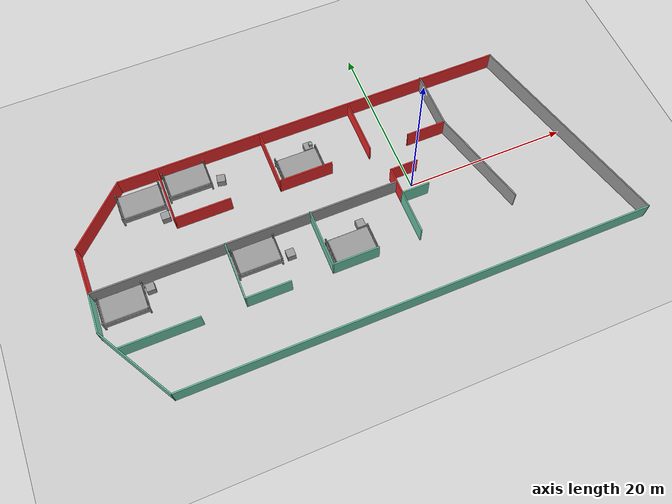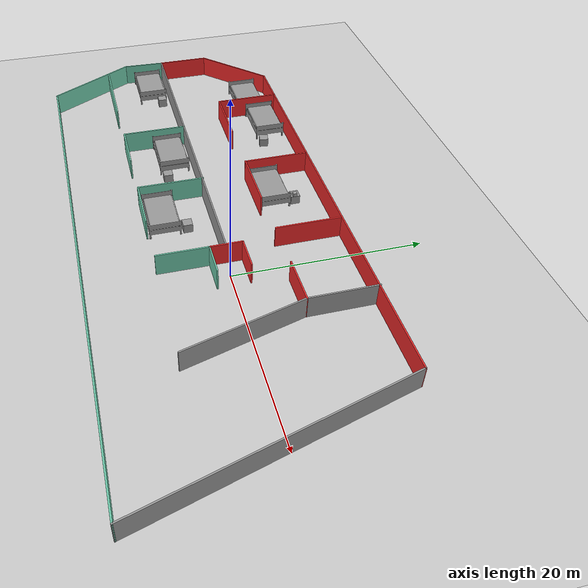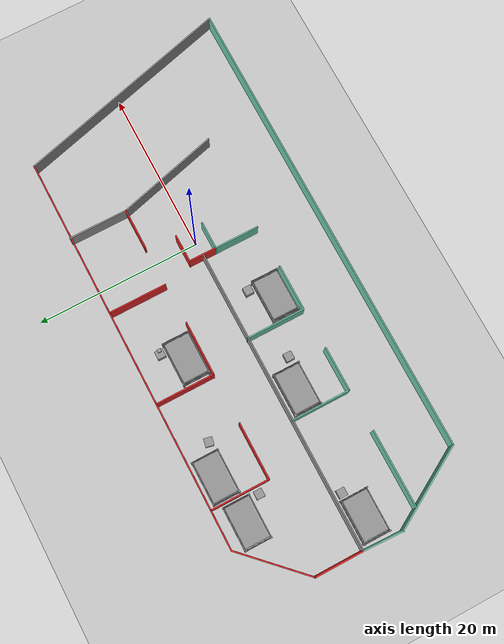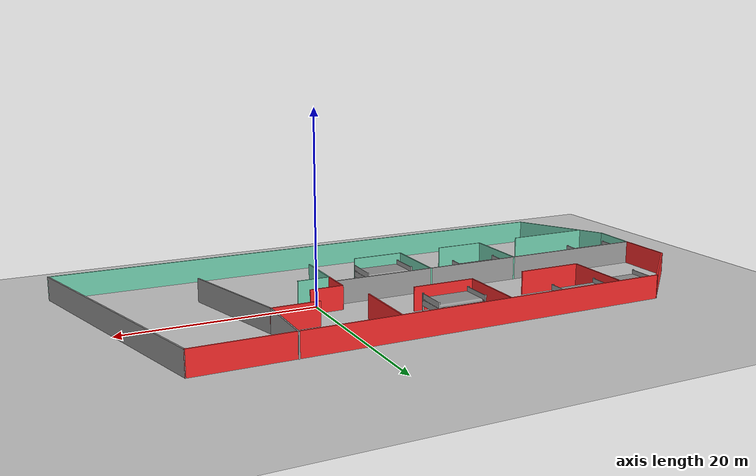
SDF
<sdf version="1.7">
 <world name="default">
  <model name="ground_plane">
   <static>1</static>
   <link name="link">
    <collision name="collision">
     <geometry><plane><normal>0 0 1</normal><size>100 100</size></plane></geometry>
     <surface>
      <contact><collide_bitmask>65535</collide_bitmask></contact>
      <friction><ode><mu>100</mu><mu2>50</mu2></ode></friction>
     </surface>
    </collision>
    <visual name="visual">
     <cast_shadows>0</cast_shadows>
     <geometry><plane><normal>0 0 1</normal><size>100 100</size></plane></geometry>
     <material>
      <script><uri>file://media/materials/scripts/gazebo.material</uri><name>Gazebo/Grey</name></script>
     </material>
    </visual>
   </link>
  </model>
  <model name="hospital">
   <pose>-7.85795 -0.812617 0 0 -0 0</pose>
   <link name="Wall_32">
    <collision name="Wall_32_Collision">
     <geometry><box><size>3.5 0.15 2.5</size></box></geometry>
     <pose>0 0 1.25 0 -0 0</pose>
    </collision>
    <visual name="Wall_32_Visual">
     <pose>0 0 1.25 0 -0 0</pose>
     <geometry><box><size>3.5 0.15 2.5</size></box></geometry>
     <material>
      <script><uri>file://media/materials/scripts/gazebo.material</uri><name>Gazebo/Grey</name></script>
      <ambient>0.435294 0.796078 0.67451 1</ambient>
     </material>
     <meta><layer>0</layer></meta>
    </visual>
    <pose>7.48729 -0.777383 0 0 -0 3.14159</pose>
   </link>
   <link name="Wall_33">
    <collision name="Wall_33_Collision">
     <geometry><box><size>3.5 0.15 2.5</size></box></geometry>
     <pose>0 0 1.25 0 -0 0</pose>
    </collision>
    <visual name="Wall_33_Visual">
     <pose>0 0 1.25 0 -0 0</pose>
     <geometry><box><size>3.5 0.15 2.5</size></box></geometry>
     <material>
      <script><uri>file://media/materials/scripts/gazebo.material</uri><name>Gazebo/Grey</name></script>
      <ambient>0.937255 0.160784 0.160784 1</ambient>
     </material>
     <meta><layer>0</layer></meta>
    </visual>
    <pose>5.81229 0.897617 0 0 -0 1.5708</pose>
   </link>
   <link name="Wall_34">
    <collision name="Wall_34_Collision">
     <geometry><box><size>3.5 0.15 2.5</size></box></geometry>
     <pose>0 0 1.25 0 -0 0</pose>
    </collision>
    <visual name="Wall_34_Visual">
     <pose>0 0 1.25 0 -0 0</pose>
     <geometry><box><size>3.5 0.15 2.5</size></box></geometry>
     <material>
      <script><uri>file://media/materials/scripts/gazebo.material</uri><name>Gazebo/Grey</name></script>
      <ambient>0.937255 0.160784 0.160784 1</ambient>
     </material>
     <meta><layer>0</layer></meta>
    </visual>
    <pose>7.48729 2.57262 0 0 -0 0</pose>
   </link>
   <link name="Wall_36">
    <collision name="Wall_36_Collision">
     <geometry><box><size>37.25 0.15 2.5</size></box></geometry>
     <pose>0 0 1.25 0 -0 0</pose>
    </collision>
    <visual name="Wall_36_Visual">
     <pose>0 0 1.25 0 -0 0</pose>
     <geometry><box><size>37.25 0.15 2.5</size></box></geometry>
     <material>
      <script><uri>file://media/materials/scripts/gazebo.material</uri><name>Gazebo/Grey</name></script>
      <ambient>0 0 0 1</ambient>
     </material>
     <meta><layer>0</layer></meta>
    </visual>
    <pose>-12.7871 0.834393 0 0 -0 3.14159</pose>
   </link>
   <link name="Wall_37">
    <collision name="Wall_37_Collision">
     <geometry><box><size>6 0.15 2.5</size></box></geometry>
     <pose>0 0 1.25 0 -0 0</pose>
    </collision>
    <visual name="Wall_37_Visual">
     <pose>0 0 1.25 0 -0 0</pose>
     <geometry><box><size>6 0.15 2.5</size></box></geometry>
     <material>
      <script><uri>file://media/materials/scripts/gazebo.material</uri><name>Gazebo/Grey</name></script>
      <ambient>0.937255 0.160784 0.160784 1</ambient>
     </material>
     <meta><layer>0</layer></meta>
    </visual>
    <pose>-31.3371 3.75939 0 0 -0 1.5708</pose>
   </link>
   <link name="Wall_38">
    <collision name="Wall_38_Collision">
     <geometry><box><size>9.5 0.15 2.5</size></box></geometry>
     <pose>0 0 1.25 0 -0 0</pose>
    </collision>
    <visual name="Wall_38_Visual">
     <pose>0 0 1.25 0 -0 0</pose>
     <geometry><box><size>9.5 0.15 2.5</size></box></geometry>
     <material>
      <script><uri>file://media/materials/scripts/gazebo.material</uri><name>Gazebo/Grey</name></script>
      <ambient>0.937255 0.160784 0.160784 1</ambient>
     </material>
     <meta><layer>0</layer></meta>
    </visual>
    <pose>-28.0313 9.99012 0 0 -0 0.785398</pose>
   </link>
   <link name="Wall_39">
    <collision name="Wall_39_Collision">
     <geometry><box><size>49.25 0.15 2.5</size></box></geometry>
     <pose>0 0 1.25 0 -0 0</pose>
    </collision>
    <visual name="Wall_39_Visual">
     <pose>0 0 1.25 0 -0 0</pose>
     <geometry><box><size>49.25 0.15 2.5</size></box></geometry>
     <material>
      <script><uri>file://media/materials/scripts/gazebo.material</uri><name>Gazebo/Grey</name></script>
      <ambient>0.937255 0.160784 0.160784 1</ambient>
     </material>
     <meta><layer>0</layer></meta>
    </visual>
    <pose>-0.175607 13.2958 0 0 -0 0</pose>
   </link>
   <link name="Wall_40">
    <collision name="Wall_40_Collision">
     <geometry><box><size>27.75 0.15 2.5</size></box></geometry>
     <pose>0 0 1.25 0 -0 0</pose>
    </collision>
    <visual name="Wall_40_Visual">
     <pose>0 0 1.25 0 -0 0</pose>
     <geometry><box><size>27.75 0.15 2.5</size></box></geometry>
     <material>
      <script><uri>file://media/materials/scripts/gazebo.material</uri><name>Gazebo/Grey</name></script>
      <ambient>0 0 0 1</ambient>
     </material>
     <meta><layer>0</layer></meta>
    </visual>
    <pose>27.9461 -0.033935 0 0 -0 -1.309</pose>
   </link>
   <link name="Wall_41">
    <collision name="Wall_41_Collision">
     <geometry><box><size>57.75 0.15 2.5</size></box></geometry>
     <pose>0 0 1.25 0 -0 0</pose>
    </collision>
    <visual name="Wall_41_Visual">
     <pose>0 0 1.25 0 -0 0</pose>
     <geometry><box><size>57.75 0.15 2.5</size></box></geometry>
     <material>
      <script><uri>file://media/materials/scripts/gazebo.material</uri><name>Gazebo/Grey</name></script>
      <ambient>0.435294 0.796078 0.67451 1</ambient>
     </material>
     <meta><layer>0</layer></meta>
    </visual>
    <pose>2.7178 -13.3637 0 0 -0 3.14159</pose>
   </link>
   <link name="Wall_42">
    <collision name="Wall_42_Collision">
     <geometry><box><size>11 0.15 2.5</size></box></geometry>
     <pose>0 0 1.25 0 -0 0</pose>
    </collision>
    <visual name="Wall_42_Visual">
     <pose>0 0 1.25 0 -0 0</pose>
     <geometry><box><size>11 0.15 2.5</size></box></geometry>
     <material>
      <script><uri>file://media/materials/scripts/gazebo.material</uri><name>Gazebo/Grey</name></script>
      <ambient>0.435294 0.796078 0.67451 1</ambient>
     </material>
     <meta><layer>0</layer></meta>
    </visual>
    <pose>-28.7947 -8.66552 0 0 -0 2.0944</pose>
   </link>
   <link name="Wall_43">
    <collision name="Wall_43_Collision">
     <geometry><box><size>4.95474 0.15 2.5</size></box></geometry>
     <pose>0 0 1.25 0 -0 0</pose>
    </collision>
    <visual name="Wall_43_Visual">
     <pose>0 0 1.25 0 -0 0</pose>
     <geometry><box><size>4.95474 0.15 2.5</size></box></geometry>
     <material>
      <script><uri>file://media/materials/scripts/gazebo.material</uri><name>Gazebo/Grey</name></script>
      <ambient>0.435294 0.796078 0.67451 1</ambient>
     </material>
     <meta><layer>0</layer></meta>
    </visual>
    <pose>-31.4221 -1.56647 0 0 -0 1.53538</pose>
   </link>
   <link name="Wall_45">
    <collision name="Wall_45_Collision">
     <geometry><box><size>7.25 0.15 2.5</size></box></geometry>
     <pose>0 0 1.25 0 -0 0</pose>
    </collision>
    <visual name="Wall_45_Visual">
     <pose>0 0 1.25 0 -0 0</pose>
     <geometry><box><size>7.25 0.15 2.5</size></box></geometry>
     <material>
      <script><uri>file://media/materials/scripts/gazebo.material</uri><name>Gazebo/Grey</name></script>
      <ambient>0.435294 0.796078 0.67451 1</ambient>
     </material>
     <meta><layer>0</layer></meta>
    </visual>
    <pose>-15.5179 -2.71252 0 0 -0 -1.5708</pose>
   </link>
   <link name="Wall_48">
    <collision name="Wall_48_Collision">
     <geometry><box><size>5.5 0.15 2.5</size></box></geometry>
     <pose>0 0 1.25 0 -0 0</pose>
    </collision>
    <visual name="Wall_48_Visual">
     <pose>0 0 1.25 0 -0 0</pose>
     <geometry><box><size>5.5 0.15 2.5</size></box></geometry>
     <material>
      <script><uri>file://media/materials/scripts/gazebo.material</uri><name>Gazebo/Grey</name></script>
      <ambient>0.435294 0.796078 0.67451 1</ambient>
     </material>
     <meta><layer>0</layer></meta>
    </visual>
    <pose>5.81229 -3.45238 0 0 -0 -1.5708</pose>
   </link>
   <link name="Wall_50">
    <collision name="Wall_50_Collision">
     <geometry><box><size>7.25 0.15 2.5</size></box></geometry>
     <pose>0 0 1.25 0 -0 0</pose>
    </collision>
    <visual name="Wall_50_Visual">
     <pose>0 0 1.25 0 -0 0</pose>
     <geometry><box><size>7.25 0.15 2.5</size></box></geometry>
     <material>
      <script><uri>file://media/materials/scripts/gazebo.material</uri><name>Gazebo/Grey</name></script>
      <ambient>0.435294 0.796078 0.67451 1</ambient>
     </material>
     <meta><layer>0</layer></meta>
    </visual>
    <pose>-5.11966 -2.65099 0 0 -0 -1.5708</pose>
   </link>
   <link name="Wall_52">
    <collision name="Wall_52_Collision">
     <geometry><box><size>9.5 0.15 2.5</size></box></geometry>
     <pose>0 0 1.25 0 -0 0</pose>
    </collision>
    <visual name="Wall_52_Visual">
     <pose>0 0 1.25 0 -0 0</pose>
     <geometry><box><size>9.5 0.15 2.5</size></box></geometry>
     <material>
      <script><uri>file://media/materials/scripts/gazebo.material</uri><name>Gazebo/Grey</name></script>
      <ambient>0.435294 0.796078 0.67451 1</ambient>
     </material>
     <meta><layer>0</layer></meta>
    </visual>
    <pose>-25.3634 -6.42281 0 0 -0 0</pose>
   </link>
   <link name="Wall_54">
    <collision name="Wall_54_Collision">
     <geometry><box><size>5.5 0.15 2.5</size></box></geometry>
     <pose>0 0 1.25 0 -0 0</pose>
    </collision>
    <visual name="Wall_54_Visual">
     <pose>0 0 1.25 0 -0 0</pose>
     <geometry><box><size>5.5 0.15 2.5</size></box></geometry>
     <material>
      <script><uri>file://media/materials/scripts/gazebo.material</uri><name>Gazebo/Grey</name></script>
      <ambient>0.435294 0.796078 0.67451 1</ambient>
     </material>
     <meta><layer>0</layer></meta>
    </visual>
    <pose>-12.8429 -6.26252 0 0 -0 0</pose>
   </link>
   <link name="Wall_56">
    <collision name="Wall_56_Collision">
     <geometry><box><size>5.75 0.15 2.5</size></box></geometry>
     <pose>0 0 1.25 0 -0 0</pose>
    </collision>
    <visual name="Wall_56_Visual">
     <pose>0 0 1.25 0 -0 0</pose>
     <geometry><box><size>5.75 0.15 2.5</size></box></geometry>
     <material>
      <script><uri>file://media/materials/scripts/gazebo.material</uri><name>Gazebo/Grey</name></script>
      <ambient>0.435294 0.796078 0.67451 1</ambient>
     </material>
     <meta><layer>0</layer></meta>
    </visual>
    <pose>-2.31966 -6.20099 0 0 -0 0</pose>
   </link>
   <link name="Wall_58">
    <collision name="Wall_58_Collision">
     <geometry><box><size>7.25 0.15 2.5</size></box></geometry>
     <pose>0 0 1.25 0 -0 0</pose>
    </collision>
    <visual name="Wall_58_Visual">
     <pose>0 0 1.25 0 -0 0</pose>
     <geometry><box><size>7.25 0.15 2.5</size></box></geometry>
     <material>
      <script><uri>file://media/materials/scripts/gazebo.material</uri><name>Gazebo/Grey</name></script>
      <ambient>0.937255 0.160784 0.160784 1</ambient>
     </material>
     <meta><layer>0</layer></meta>
    </visual>
    <pose>-19.9479 9.71611 0 0 -0 -1.5708</pose>
   </link>
   <link name="Wall_60">
    <collision name="Wall_60_Collision">
     <geometry><box><size>7 0.15 2.5</size></box></geometry>
     <pose>0 0 1.25 0 -0 0</pose>
    </collision>
    <visual name="Wall_60_Visual">
     <pose>0 0 1.25 0 -0 0</pose>
     <geometry><box><size>7 0.15 2.5</size></box></geometry>
     <material>
      <script><uri>file://media/materials/scripts/gazebo.material</uri><name>Gazebo/Grey</name></script>
      <ambient>0.937255 0.160784 0.160784 1</ambient>
     </material>
     <meta><layer>0</layer></meta>
    </visual>
    <pose>-16.5229 6.16611 0 0 -0 0</pose>
   </link>
   <link name="Wall_62">
    <collision name="Wall_62_Collision">
     <geometry><box><size>7.25 0.15 2.5</size></box></geometry>
     <pose>0 0 1.25 0 -0 0</pose>
    </collision>
    <visual name="Wall_62_Visual">
     <pose>0 0 1.25 0 -0 0</pose>
     <geometry><box><size>7.25 0.15 2.5</size></box></geometry>
     <material>
      <script><uri>file://media/materials/scripts/gazebo.material</uri><name>Gazebo/Grey</name></script>
      <ambient>0.937255 0.160784 0.160784 1</ambient>
     </material>
     <meta><layer>0</layer></meta>
    </visual>
    <pose>-6.96549 9.71611 0 0 -0 -1.5708</pose>
   </link>
   <link name="Wall_63">
    <collision name="Wall_63_Collision">
     <geometry><box><size>6.75 0.15 2.5</size></box></geometry>
     <pose>0 0 1.25 0 -0 0</pose>
    </collision>
    <visual name="Wall_63_Visual">
     <pose>0 0 1.25 0 -0 0</pose>
     <geometry><box><size>6.75 0.15 2.5</size></box></geometry>
     <material>
      <script><uri>file://media/materials/scripts/gazebo.material</uri><name>Gazebo/Grey</name></script>
      <ambient>0.937255 0.160784 0.160784 1</ambient>
     </material>
     <meta><layer>0</layer></meta>
    </visual>
    <pose>-3.66549 6.16611 0 0 -0 0</pose>
   </link>
   <link name="Wall_67">
    <collision name="Wall_67_Collision">
     <geometry><box><size>7 0.15 2.5</size></box></geometry>
     <pose>0 0 1.25 0 -0 0</pose>
    </collision>
    <visual name="Wall_67_Visual">
     <pose>0 0 1.25 0 -0 0</pose>
     <geometry><box><size>7 0.15 2.5</size></box></geometry>
     <material>
      <script><uri>file://media/materials/scripts/gazebo.material</uri><name>Gazebo/Grey</name></script>
      <ambient>0.937255 0.160784 0.160784 1</ambient>
     </material>
     <meta><layer>0</layer></meta>
    </visual>
    <pose>4.65913 9.70467 0 0 -0 1.5708</pose>
   </link>
   <link name="Wall_69">
    <collision name="Wall_69_Collision">
     <geometry><box><size>7.25 0.15 2.5</size></box></geometry>
     <pose>0 0 1.25 0 -0 0</pose>
    </collision>
    <visual name="Wall_69_Visual">
     <pose>0 0 1.25 0 -0 0</pose>
     <geometry><box><size>7.25 0.15 2.5</size></box></geometry>
     <material>
      <script><uri>file://media/materials/scripts/gazebo.material</uri><name>Gazebo/Grey</name></script>
      <ambient>0 0 0 1</ambient>
     </material>
     <meta><layer>0</layer></meta>
    </visual>
    <pose>14.5816 9.84116 0 0 -0 -1.5708</pose>
   </link>
   <link name="Wall_70">
    <collision name="Wall_70_Collision">
     <geometry><box><size>5 0.15 2.5</size></box></geometry>
     <pose>0 0 1.25 0 -0 0</pose>
    </collision>
    <visual name="Wall_70_Visual">
     <pose>0 0 1.25 0 -0 0</pose>
     <geometry><box><size>5 0.15 2.5</size></box></geometry>
     <material>
      <script><uri>file://media/materials/scripts/gazebo.material</uri><name>Gazebo/Grey</name></script>
      <ambient>0.937255 0.160784 0.160784 1</ambient>
     </material>
     <meta><layer>0</layer></meta>
    </visual>
    <pose>12.1566 6.29116 0 0 -0 3.14159</pose>
   </link>
   <link name="Wall_72">
    <collision name="Wall_72_Collision">
     <geometry><box><size>13 0.15 2.5</size></box></geometry>
     <pose>0 0 1.25 0 -0 0</pose>
    </collision>
    <visual name="Wall_72_Visual">
     <pose>0 0 1.25 0 -0 0</pose>
     <geometry><box><size>13 0.15 2.5</size></box></geometry>
     <material>
      <script><uri>file://media/materials/scripts/gazebo.material</uri><name>Gazebo/Grey</name></script>
      <ambient>0 0 0 1</ambient>
     </material>
     <meta><layer>0</layer></meta>
    </visual>
    <pose>16.2445 0.085088 0 0 -0 -1.309</pose>
   </link>
   <static>1</static>
  </model>
  <model name="red_box">
   <model name="green_box">
    <link name="new_link">
     <visual name="top_visual">
      <geometry><mesh><uri>model://red_box/meshes/red_box.dae</uri></mesh></geometry>
     </visual>
     <collision name="collision">
      <geometry><box><size>0.4 0.4 0.4</size></box></geometry>
      <origin xyz="0 0 0" rpy="0 0 0"/>
     </collision>
     <inertial>
      <mass>1</mass>
      <inertia><ixx>0.01</ixx><ixy>0</ixy><ixz>0</ixz><iyy>0.01</iyy><iyz>0</iyz><izz>0.01</izz></inertia>
     </inertial>
    </link>
    <pose>-2e-06 -0 -0 0 -0 0</pose>
   </model>
   <static>0</static>
   <pose>-9.41712 9.46674 1.2 -1e-06 1e-06 -0.002889</pose>
  </model>
  <model name="unit_box_0">
   <link name="link">
    <inertial>
     <mass>50</mass>
     <inertia><ixx>8.33333</ixx><ixy>0</ixy><ixz>0</ixz><iyy>8.33333</iyy><iyz>0</iyz><izz>8.33333</izz></inertia>
    </inertial>
    <visual name="visual">
     <geometry><box><size>1 1 1</size></box></geometry>
     <material>
      <script><name>Gazebo/Grey</name><uri>file://media/materials/scripts/gazebo.material</uri></script>
      <shader type="pixel"><normal_map>__default__</normal_map></shader>
     </material>
    </visual>
    <collision name="collision">
     <geometry><box><size>1 1 1</size></box></geometry>
     <surface>
      <friction>
       <ode><mu>1</mu><mu2>1</mu2><fdir1>0 0 0</fdir1><slip1>0</slip1><slip2>0</slip2></ode>
       <torsional>
        <coefficient>1</coefficient>
        <patch_radius>0</patch_radius>
        <surface_radius>0</surface_radius>
        <use_patch_radius>1</use_patch_radius>
        <ode><slip>0</slip></ode>
       </torsional>
      </friction>
      <bounce><restitution_coefficient>0</restitution_coefficient><threshold>1e+06</threshold></bounce>
      <contact>
       <collide_without_contact>0</collide_without_contact>
       <collide_without_contact_bitmask>1</collide_without_contact_bitmask>
       <collide_bitmask>1</collide_bitmask>
       <ode>
        <soft_cfm>0</soft_cfm>
        <soft_erp>0.2</soft_erp>
        <kp>1e+13</kp>
        <kd>1</kd>
        <max_vel>0.01</max_vel>
        <min_depth>0</min_depth>
       </ode>
       <bullet>
        <split_impulse>1</split_impulse>
        <split_impulse_penetration_threshold>-0.01</split_impulse_penetration_threshold>
        <soft_cfm>0</soft_cfm>
        <soft_erp>0.2</soft_erp>
        <kp>1e+13</kp>
        <kd>1</kd>
       </bullet>
      </contact>
     </surface>
    </collision>
   </link>
   <static>0</static>
   <pose>-9.74899 9.53266 0.5 -1e-06 1e-06 -0.000148</pose>
  </model>
  <model name="unit_box_2">
   <link name="link">
    <inertial>
     <mass>50</mass>
     <inertia><ixx>8.33333</ixx><ixy>0</ixy><ixz>0</ixz><iyy>8.33333</iyy><iyz>0</iyz><izz>8.33333</izz></inertia>
    </inertial>
    <visual name="visual">
     <geometry><box><size>1 1 1</size></box></geometry>
     <material>
      <script><name>Gazebo/Grey</name><uri>file://media/materials/scripts/gazebo.material</uri></script>
      <shader type="pixel"><normal_map>__default__</normal_map></shader>
     </material>
    </visual>
    <collision name="collision">
     <geometry><box><size>1 1 1</size></box></geometry>
     <surface>
      <friction>
       <ode><mu>1</mu><mu2>1</mu2><fdir1>0 0 0</fdir1><slip1>0</slip1><slip2>0</slip2></ode>
       <torsional>
        <coefficient>1</coefficient>
        <patch_radius>0</patch_radius>
        <surface_radius>0</surface_radius>
        <use_patch_radius>1</use_patch_radius>
        <ode><slip>0</slip></ode>
       </torsional>
      </friction>
      <bounce><restitution_coefficient>0</restitution_coefficient><threshold>1e+06</threshold></bounce>
      <contact>
       <collide_without_contact>0</collide_without_contact>
       <collide_without_contact_bitmask>1</collide_without_contact_bitmask>
       <collide_bitmask>1</collide_bitmask>
       <ode>
        <soft_cfm>0</soft_cfm>
        <soft_erp>0.2</soft_erp>
        <kp>1e+13</kp>
        <kd>1</kd>
        <max_vel>0.01</max_vel>
        <min_depth>0</min_depth>
       </ode>
       <bullet>
        <split_impulse>1</split_impulse>
        <split_impulse_penetration_threshold>-0.01</split_impulse_penetration_threshold>
        <soft_cfm>0</soft_cfm>
        <soft_erp>0.2</soft_erp>
        <kp>1e+13</kp>
        <kd>1</kd>
       </bullet>
      </contact>
     </surface>
    </collision>
   </link>
   <static>0</static>
   <pose>-7.85792 -2.71407 0.5 0 -0 0</pose>
  </model>
  <model name="unit_box_3">
   <link name="link">
    <inertial>
     <mass>50</mass>
     <inertia><ixx>8.33333</ixx><ixy>0</ixy><ixz>0</ixz><iyy>8.33333</iyy><iyz>0</iyz><izz>8.33333</izz></inertia>
    </inertial>
    <visual name="visual">
     <geometry><box><size>1 1 1</size></box></geometry>
     <material>
      <script><name>Gazebo/Grey</name><uri>file://media/materials/scripts/gazebo.material</uri></script>
      <shader type="pixel"><normal_map>__default__</normal_map></shader>
     </material>
    </visual>
    <collision name="collision">
     <geometry><box><size>1 1 1</size></box></geometry>
     <surface>
      <friction>
       <ode><mu>1</mu><mu2>1</mu2><fdir1>0 0 0</fdir1><slip1>0</slip1><slip2>0</slip2></ode>
       <torsional>
        <coefficient>1</coefficient>
        <patch_radius>0</patch_radius>
        <surface_radius>0</surface_radius>
        <use_patch_radius>1</use_patch_radius>
        <ode><slip>0</slip></ode>
       </torsional>
      </friction>
      <bounce><restitution_coefficient>0</restitution_coefficient><threshold>1e+06</threshold></bounce>
      <contact>
       <collide_without_contact>0</collide_without_contact>
       <collide_without_contact_bitmask>1</collide_without_contact_bitmask>
       <collide_bitmask>1</collide_bitmask>
       <ode>
        <soft_cfm>0</soft_cfm>
        <soft_erp>0.2</soft_erp>
        <kp>1e+13</kp>
        <kd>1</kd>
        <max_vel>0.01</max_vel>
        <min_depth>0</min_depth>
       </ode>
       <bullet>
        <split_impulse>1</split_impulse>
        <split_impulse_penetration_threshold>-0.01</split_impulse_penetration_threshold>
        <soft_cfm>0</soft_cfm>
        <soft_erp>0.2</soft_erp>
        <kp>1e+13</kp>
        <kd>1</kd>
       </bullet>
      </contact>
     </surface>
    </collision>
   </link>
   <static>0</static>
   <pose>-16.7473 -3.16546 0.5 0 -0 0</pose>
  </model>
  <model name="unit_box_4">
   <link name="link">
    <inertial>
     <mass>50</mass>
     <inertia><ixx>8.33333</ixx><ixy>0</ixy><ixz>0</ixz><iyy>8.33333</iyy><iyz>0</iyz><izz>8.33333</izz></inertia>
    </inertial>
    <visual name="visual">
     <geometry><box><size>1 1 1</size></box></geometry>
     <material>
      <script><name>Gazebo/Grey</name><uri>file://media/materials/scripts/gazebo.material</uri></script>
      <shader type="pixel"><normal_map>__default__</normal_map></shader>
     </material>
    </visual>
    <collision name="collision">
     <geometry><box><size>1 1 1</size></box></geometry>
     <surface>
      <friction>
       <ode><mu>1</mu><mu2>1</mu2><fdir1>0 0 0</fdir1><slip1>0</slip1><slip2>0</slip2></ode>
       <torsional>
        <coefficient>1</coefficient>
        <patch_radius>0</patch_radius>
        <surface_radius>0</surface_radius>
        <use_patch_radius>1</use_patch_radius>
        <ode><slip>0</slip></ode>
       </torsional>
      </friction>
      <bounce><restitution_coefficient>0</restitution_coefficient><threshold>1e+06</threshold></bounce>
      <contact>
       <collide_without_contact>0</collide_without_contact>
       <collide_without_contact_bitmask>1</collide_without_contact_bitmask>
       <collide_bitmask>1</collide_bitmask>
       <ode>
        <soft_cfm>0</soft_cfm>
        <soft_erp>0.2</soft_erp>
        <kp>1e+13</kp>
        <kd>1</kd>
        <max_vel>0.01</max_vel>
        <min_depth>0</min_depth>
       </ode>
       <bullet>
        <split_impulse>1</split_impulse>
        <split_impulse_penetration_threshold>-0.01</split_impulse_penetration_threshold>
        <soft_cfm>0</soft_cfm>
        <soft_erp>0.2</soft_erp>
        <kp>1e+13</kp>
        <kd>1</kd>
       </bullet>
      </contact>
     </surface>
    </collision>
   </link>
   <static>0</static>
   <pose>-21.0387 9.24892 0.5 0 0 -0.202587</pose>
  </model>
  <model name="unit_box_5">
   <link name="link">
    <inertial>
     <mass>50</mass>
     <inertia><ixx>8.33333</ixx><ixy>0</ixy><ixz>0</ixz><iyy>8.33333</iyy><iyz>0</iyz><izz>8.33333</izz></inertia>
    </inertial>
    <visual name="visual">
     <geometry><box><size>1 1 1</size></box></geometry>
     <material>
      <script><name>Gazebo/Grey</name><uri>file://media/materials/scripts/gazebo.material</uri></script>
      <shader type="pixel"><normal_map>__default__</normal_map></shader>
     </material>
    </visual>
    <collision name="collision">
     <geometry><box><size>1 1 1</size></box></geometry>
     <surface>
      <friction>
       <ode><mu>1</mu><mu2>1</mu2><fdir1>0 0 0</fdir1><slip1>0</slip1><slip2>0</slip2></ode>
       <torsional>
        <coefficient>1</coefficient>
        <patch_radius>0</patch_radius>
        <surface_radius>0</surface_radius>
        <use_patch_radius>1</use_patch_radius>
        <ode><slip>0</slip></ode>
       </torsional>
      </friction>
      <bounce><restitution_coefficient>0</restitution_coefficient><threshold>1e+06</threshold></bounce>
      <contact>
       <collide_without_contact>0</collide_without_contact>
       <collide_without_contact_bitmask>1</collide_without_contact_bitmask>
       <collide_bitmask>1</collide_bitmask>
       <ode>
        <soft_cfm>0</soft_cfm>
        <soft_erp>0.2</soft_erp>
        <kp>1e+13</kp>
        <kd>1</kd>
        <max_vel>0.01</max_vel>
        <min_depth>0</min_depth>
       </ode>
       <bullet>
        <split_impulse>1</split_impulse>
        <split_impulse_penetration_threshold>-0.01</split_impulse_penetration_threshold>
        <soft_cfm>0</soft_cfm>
        <soft_erp>0.2</soft_erp>
        <kp>1e+13</kp>
        <kd>1</kd>
       </bullet>
      </contact>
     </surface>
    </collision>
   </link>
   <static>0</static>
   <pose>-28.6471 6.9794 0.5 0 -0 0</pose>
  </model>
  <model name="unit_box_6">
   <link name="link">
    <inertial>
     <mass>50</mass>
     <inertia><ixx>8.33333</ixx><ixy>0</ixy><ixz>0</ixz><iyy>8.33333</iyy><iyz>0</iyz><izz>8.33333</izz></inertia>
    </inertial>
    <visual name="visual">
     <geometry><box><size>1 1 1</size></box></geometry>
     <material>
      <script><name>Gazebo/Grey</name><uri>file://media/materials/scripts/gazebo.material</uri></script>
      <shader type="pixel"><normal_map>__default__</normal_map></shader>
     </material>
    </visual>
    <collision name="collision">
     <geometry><box><size>1 1 1</size></box></geometry>
     <surface>
      <friction>
       <ode><mu>1</mu><mu2>1</mu2><fdir1>0 0 0</fdir1><slip1>0</slip1><slip2>0</slip2></ode>
       <torsional>
        <coefficient>1</coefficient>
        <patch_radius>0</patch_radius>
        <surface_radius>0</surface_radius>
        <use_patch_radius>1</use_patch_radius>
        <ode><slip>0</slip></ode>
       </torsional>
      </friction>
      <bounce><restitution_coefficient>0</restitution_coefficient><threshold>1e+06</threshold></bounce>
      <contact>
       <collide_without_contact>0</collide_without_contact>
       <collide_without_contact_bitmask>1</collide_without_contact_bitmask>
       <collide_bitmask>1</collide_bitmask>
       <ode>
        <soft_cfm>0</soft_cfm>
        <soft_erp>0.2</soft_erp>
        <kp>1e+13</kp>
        <kd>1</kd>
        <max_vel>0.01</max_vel>
        <min_depth>0</min_depth>
       </ode>
       <bullet>
        <split_impulse>1</split_impulse>
        <split_impulse_penetration_threshold>-0.01</split_impulse_penetration_threshold>
        <soft_cfm>0</soft_cfm>
        <soft_erp>0.2</soft_erp>
        <kp>1e+13</kp>
        <kd>1</kd>
       </bullet>
      </contact>
     </surface>
    </collision>
   </link>
   <static>0</static>
   <pose>-32.7752 -1.07239 0.5 0 -0 0</pose>
  </model>
  <model name="BED">
   <link name="link_1">
    <inertial>
     <mass>100</mass>
     <inertia><ixx>10</ixx><ixy>0</ixy><ixz>0</ixz><iyy>10</iyy><iyz>0</iyz><izz>10</izz></inertia>
    </inertial>
    <pose>-1e-06 -0 0 0 -0 0</pose>
    <visual name="visual">
     <geometry>
      <mesh><uri>/home/teera/dev_ws/src/tratsah/meshes/dae/bed.dae</uri><scale>1 1 1</scale></mesh>
     </geometry>
     <material>
      <lighting>1</lighting>
      <script><uri>file://media/materials/scripts/gazebo.material</uri><name>Gazebo/Grey</name></script>
      <shader type="pixel"><normal_map>__default__</normal_map></shader>
     </material>
    </visual>
    <collision name="collision">
     <geometry>
      <mesh><uri>/home/teera/dev_ws/src/tratsah/meshes/dae/bed.dae</uri><scale>1 1 1</scale></mesh>
     </geometry>
     <surface>
      <friction>
       <ode><mu>1</mu><mu2>1</mu2><fdir1>0 0 0</fdir1><slip1>0</slip1><slip2>0</slip2></ode>
       <torsional>
        <coefficient>1</coefficient>
        <patch_radius>0</patch_radius>
        <surface_radius>0</surface_radius>
        <use_patch_radius>1</use_patch_radius>
        <ode><slip>0</slip></ode>
       </torsional>
      </friction>
      <bounce><restitution_coefficient>0</restitution_coefficient><threshold>1e+06</threshold></bounce>
      <contact>
       <collide_without_contact>0</collide_without_contact>
       <collide_without_contact_bitmask>1</collide_without_contact_bitmask>
       <collide_bitmask>1</collide_bitmask>
       <ode>
        <soft_cfm>0</soft_cfm>
        <soft_erp>0.2</soft_erp>
        <kp>1e+13</kp>
        <kd>1</kd>
        <max_vel>0.01</max_vel>
        <min_depth>0</min_depth>
       </ode>
       <bullet>
        <split_impulse>1</split_impulse>
        <split_impulse_penetration_threshold>-0.01</split_impulse_penetration_threshold>
        <soft_cfm>0</soft_cfm>
        <soft_erp>0.2</soft_erp>
        <kp>1e+13</kp>
        <kd>1</kd>
       </bullet>
      </contact>
     </surface>
    </collision>
   </link>
   <static>0</static>
   <pose>-24.7949 10.6059 -0.005869 -0.00033 0 0.000142</pose>
  </model>
  <model name="BED_0">
   <link name="link_1">
    <inertial>
     <mass>100</mass>
     <inertia><ixx>10</ixx><ixy>0</ixy><ixz>0</ixz><iyy>10</iyy><iyz>0</iyz><izz>10</izz></inertia>
    </inertial>
    <pose>-1e-06 -0 0 0 -0 0</pose>
    <visual name="visual">
     <geometry>
      <mesh><uri>/home/teera/dev_ws/src/tratsah/meshes/dae/bed.dae</uri><scale>1 1 1</scale></mesh>
     </geometry>
     <material>
      <lighting>1</lighting>
      <script><uri>file://media/materials/scripts/gazebo.material</uri><name>Gazebo/Grey</name></script>
      <shader type="pixel"><normal_map>__default__</normal_map></shader>
     </material>
    </visual>
    <collision name="collision">
     <geometry>
      <mesh><uri>/home/teera/dev_ws/src/tratsah/meshes/dae/bed.dae</uri><scale>1 1 1</scale></mesh>
     </geometry>
     <surface>
      <friction>
       <ode><mu>1</mu><mu2>1</mu2><fdir1>0 0 0</fdir1><slip1>0</slip1><slip2>0</slip2></ode>
       <torsional>
        <coefficient>1</coefficient>
        <patch_radius>0</patch_radius>
        <surface_radius>0</surface_radius>
        <use_patch_radius>1</use_patch_radius>
        <ode><slip>0</slip></ode>
       </torsional>
      </friction>
      <bounce><restitution_coefficient>0</restitution_coefficient><threshold>1e+06</threshold></bounce>
      <contact>
       <collide_without_contact>0</collide_without_contact>
       <collide_without_contact_bitmask>1</collide_without_contact_bitmask>
       <collide_bitmask>1</collide_bitmask>
       <ode>
        <soft_cfm>0</soft_cfm>
        <soft_erp>0.2</soft_erp>
        <kp>1e+13</kp>
        <kd>1</kd>
        <max_vel>0.01</max_vel>
        <min_depth>0</min_depth>
       </ode>
       <bullet>
        <split_impulse>1</split_impulse>
        <split_impulse_penetration_threshold>-0.01</split_impulse_penetration_threshold>
        <soft_cfm>0</soft_cfm>
        <soft_erp>0.2</soft_erp>
        <kp>1e+13</kp>
        <kd>1</kd>
       </bullet>
      </contact>
     </surface>
    </collision>
   </link>
   <static>0</static>
   <pose>-30.6829 9.83902 -0.005271 -0.000184 -0.000113 6.5e-05</pose>
  </model>
  <model name="BED_1">
   <link name="link_1">
    <inertial>
     <mass>100</mass>
     <inertia><ixx>10</ixx><ixy>0</ixy><ixz>0</ixz><iyy>10</iyy><iyz>0</iyz><izz>10</izz></inertia>
    </inertial>
    <pose>-1e-06 -0 0 0 -0 0</pose>
    <visual name="visual">
     <geometry>
      <mesh><uri>/home/teera/dev_ws/src/tratsah/meshes/dae/bed.dae</uri><scale>1 1 1</scale></mesh>
     </geometry>
     <material>
      <lighting>1</lighting>
      <script><uri>file://media/materials/scripts/gazebo.material</uri><name>Gazebo/Grey</name></script>
      <shader type="pixel"><normal_map>__default__</normal_map></shader>
     </material>
    </visual>
    <collision name="collision">
     <geometry>
      <mesh><uri>/home/teera/dev_ws/src/tratsah/meshes/dae/bed.dae</uri><scale>1 1 1</scale></mesh>
     </geometry>
     <surface>
      <friction>
       <ode><mu>1</mu><mu2>1</mu2><fdir1>0 0 0</fdir1><slip1>0</slip1><slip2>0</slip2></ode>
       <torsional>
        <coefficient>1</coefficient>
        <patch_radius>0</patch_radius>
        <surface_radius>0</surface_radius>
        <use_patch_radius>1</use_patch_radius>
        <ode><slip>0</slip></ode>
       </torsional>
      </friction>
      <bounce><restitution_coefficient>0</restitution_coefficient><threshold>1e+06</threshold></bounce>
      <contact>
       <collide_without_contact>0</collide_without_contact>
       <collide_without_contact_bitmask>1</collide_without_contact_bitmask>
       <collide_bitmask>1</collide_bitmask>
       <ode>
        <soft_cfm>0</soft_cfm>
        <soft_erp>0.2</soft_erp>
        <kp>1e+13</kp>
        <kd>1</kd>
        <max_vel>0.01</max_vel>
        <min_depth>0</min_depth>
       </ode>
       <bullet>
        <split_impulse>1</split_impulse>
        <split_impulse_penetration_threshold>-0.01</split_impulse_penetration_threshold>
        <soft_cfm>0</soft_cfm>
        <soft_erp>0.2</soft_erp>
        <kp>1e+13</kp>
        <kd>1</kd>
       </bullet>
      </contact>
     </surface>
    </collision>
   </link>
   <static>0</static>
   <pose>-36.028 -1.85899 -0.005271 -0.000184 -0.000113 6.5e-05</pose>
  </model>
  <model name="BED_2">
   <link name="link_1">
    <inertial>
     <mass>100</mass>
     <inertia><ixx>10</ixx><ixy>0</ixy><ixz>0</ixz><iyy>10</iyy><iyz>0</iyz><izz>10</izz></inertia>
    </inertial>
    <pose>-1e-06 -0 0 0 -0 0</pose>
    <visual name="visual">
     <geometry>
      <mesh><uri>/home/teera/dev_ws/src/tratsah/meshes/dae/bed.dae</uri><scale>1 1 1</scale></mesh>
     </geometry>
     <material>
      <lighting>1</lighting>
      <script><uri>file://media/materials/scripts/gazebo.material</uri><name>Gazebo/Grey</name></script>
      <shader type="pixel"><normal_map>__default__</normal_map></shader>
     </material>
    </visual>
    <collision name="collision">
     <geometry>
      <mesh><uri>/home/teera/dev_ws/src/tratsah/meshes/dae/bed.dae</uri><scale>1 1 1</scale></mesh>
     </geometry>
     <surface>
      <friction>
       <ode><mu>1</mu><mu2>1</mu2><fdir1>0 0 0</fdir1><slip1>0</slip1><slip2>0</slip2></ode>
       <torsional>
        <coefficient>1</coefficient>
        <patch_radius>0</patch_radius>
        <surface_radius>0</surface_radius>
        <use_patch_radius>1</use_patch_radius>
        <ode><slip>0</slip></ode>
       </torsional>
      </friction>
      <bounce><restitution_coefficient>0</restitution_coefficient><threshold>1e+06</threshold></bounce>
      <contact>
       <collide_without_contact>0</collide_without_contact>
       <collide_without_contact_bitmask>1</collide_without_contact_bitmask>
       <collide_bitmask>1</collide_bitmask>
       <ode>
        <soft_cfm>0</soft_cfm>
        <soft_erp>0.2</soft_erp>
        <kp>1e+13</kp>
        <kd>1</kd>
        <max_vel>0.01</max_vel>
        <min_depth>0</min_depth>
       </ode>
       <bullet>
        <split_impulse>1</split_impulse>
        <split_impulse_penetration_threshold>-0.01</split_impulse_penetration_threshold>
        <soft_cfm>0</soft_cfm>
        <soft_erp>0.2</soft_erp>
        <kp>1e+13</kp>
        <kd>1</kd>
       </bullet>
      </contact>
     </surface>
    </collision>
   </link>
   <static>0</static>
   <pose>-20.4142 -1.93417 -0.005271 -0.000184 -0.000113 6.5e-05</pose>
  </model>
  <model name="BED_3">
   <link name="link_1">
    <inertial>
     <mass>100</mass>
     <inertia><ixx>10</ixx><ixy>0</ixy><ixz>0</ixz><iyy>10</iyy><iyz>0</iyz><izz>10</izz></inertia>
    </inertial>
    <pose>-1e-06 -0 0 0 -0 0</pose>
    <visual name="visual">
     <geometry>
      <mesh><uri>/home/teera/dev_ws/src/tratsah/meshes/dae/bed.dae</uri><scale>1 1 1</scale></mesh>
     </geometry>
     <material>
      <lighting>1</lighting>
      <script><uri>file://media/materials/scripts/gazebo.material</uri><name>Gazebo/Grey</name></script>
      <shader type="pixel"><normal_map>__default__</normal_map></shader>
     </material>
    </visual>
    <collision name="collision">
     <geometry>
      <mesh><uri>/home/teera/dev_ws/src/tratsah/meshes/dae/bed.dae</uri><scale>1 1 1</scale></mesh>
     </geometry>
     <surface>
      <friction>
       <ode><mu>1</mu><mu2>1</mu2><fdir1>0 0 0</fdir1><slip1>0</slip1><slip2>0</slip2></ode>
       <torsional>
        <coefficient>1</coefficient>
        <patch_radius>0</patch_radius>
        <surface_radius>0</surface_radius>
        <use_patch_radius>1</use_patch_radius>
        <ode><slip>0</slip></ode>
       </torsional>
      </friction>
      <bounce><restitution_coefficient>0</restitution_coefficient><threshold>1e+06</threshold></bounce>
      <contact>
       <collide_without_contact>0</collide_without_contact>
       <collide_without_contact_bitmask>1</collide_without_contact_bitmask>
       <collide_bitmask>1</collide_bitmask>
       <ode>
        <soft_cfm>0</soft_cfm>
        <soft_erp>0.2</soft_erp>
        <kp>1e+13</kp>
        <kd>1</kd>
        <max_vel>0.01</max_vel>
        <min_depth>0</min_depth>
       </ode>
       <bullet>
        <split_impulse>1</split_impulse>
        <split_impulse_penetration_threshold>-0.01</split_impulse_penetration_threshold>
        <soft_cfm>0</soft_cfm>
        <soft_erp>0.2</soft_erp>
        <kp>1e+13</kp>
        <kd>1</kd>
       </bullet>
      </contact>
     </surface>
    </collision>
   </link>
   <static>0</static>
   <pose>-9.81001 -4.8819 -0.005271 -0.000184 -0.000113 6.5e-05</pose>
  </model>
  <model name="BED_5">
   <link name="link_1">
    <inertial>
     <mass>100</mass>
     <inertia><ixx>10</ixx><ixy>0</ixy><ixz>0</ixz><iyy>10</iyy><iyz>0</iyz><izz>10</izz></inertia>
    </inertial>
    <pose>-1e-06 -0 0 0 -0 0</pose>
    <visual name="visual">
     <geometry>
      <mesh><uri>/home/teera/dev_ws/src/tratsah/meshes/dae/bed.dae</uri><scale>1 1 1</scale></mesh>
     </geometry>
     <material>
      <lighting>1</lighting>
      <script><uri>file://media/materials/scripts/gazebo.material</uri><name>Gazebo/Grey</name></script>
      <shader type="pixel"><normal_map>__default__</normal_map></shader>
     </material>
    </visual>
    <collision name="collision">
     <geometry>
      <mesh><uri>/home/teera/dev_ws/src/tratsah/meshes/dae/bed.dae</uri><scale>1 1 1</scale></mesh>
     </geometry>
     <surface>
      <friction>
       <ode><mu>1</mu><mu2>1</mu2><fdir1>0 0 0</fdir1><slip1>0</slip1><slip2>0</slip2></ode>
       <torsional>
        <coefficient>1</coefficient>
        <patch_radius>0</patch_radius>
        <surface_radius>0</surface_radius>
        <use_patch_radius>1</use_patch_radius>
        <ode><slip>0</slip></ode>
       </torsional>
      </friction>
      <bounce><restitution_coefficient>0</restitution_coefficient><threshold>1e+06</threshold></bounce>
      <contact>
       <collide_without_contact>0</collide_without_contact>
       <collide_without_contact_bitmask>1</collide_without_contact_bitmask>
       <collide_bitmask>1</collide_bitmask>
       <ode>
        <soft_cfm>0</soft_cfm>
        <soft_erp>0.2</soft_erp>
        <kp>1e+13</kp>
        <kd>1</kd>
        <max_vel>0.01</max_vel>
        <min_depth>0</min_depth>
       </ode>
       <bullet>
        <split_impulse>1</split_impulse>
        <split_impulse_penetration_threshold>-0.01</split_impulse_penetration_threshold>
        <soft_cfm>0</soft_cfm>
        <soft_erp>0.2</soft_erp>
        <kp>1e+13</kp>
        <kd>1</kd>
       </bullet>
      </contact>
     </surface>
    </collision>
   </link>
   <static>0</static>
   <pose>-11.5341 7.43219 -0.005271 -0.000184 -0.000113 6.5e-05</pose>
  </model>
 </world>
</sdf>
